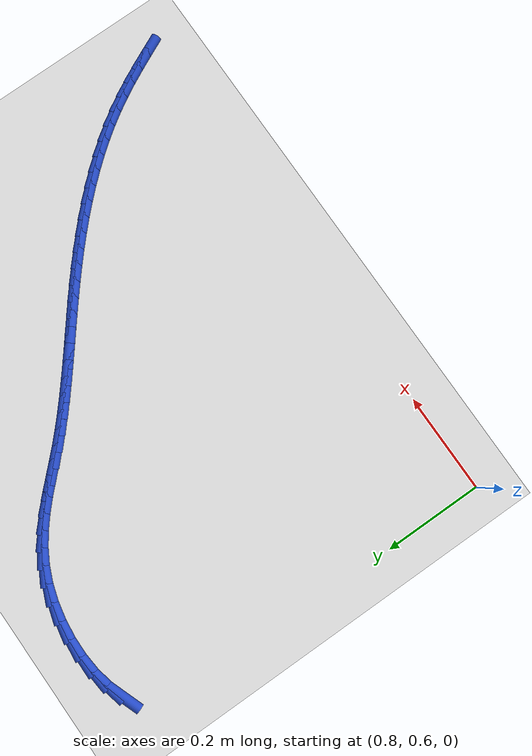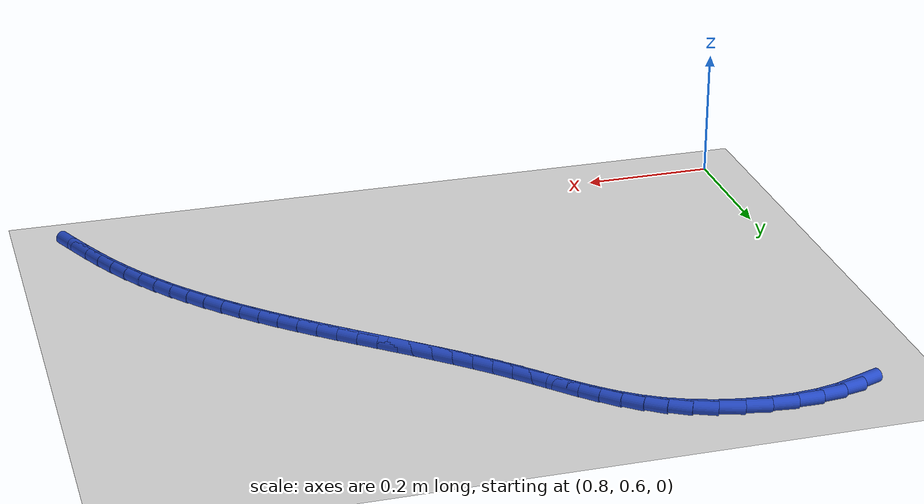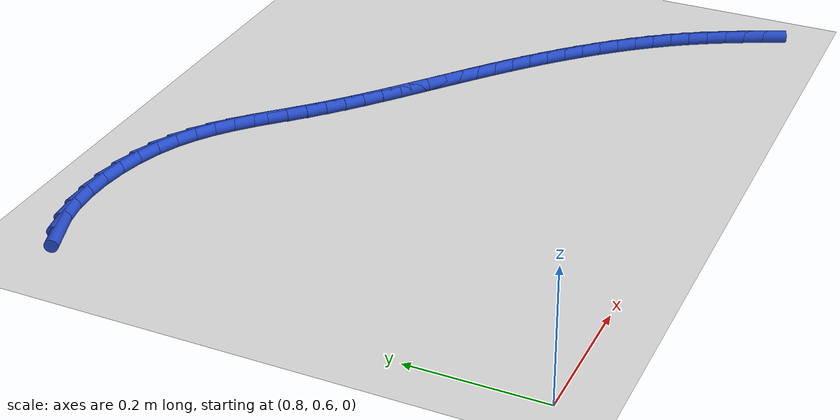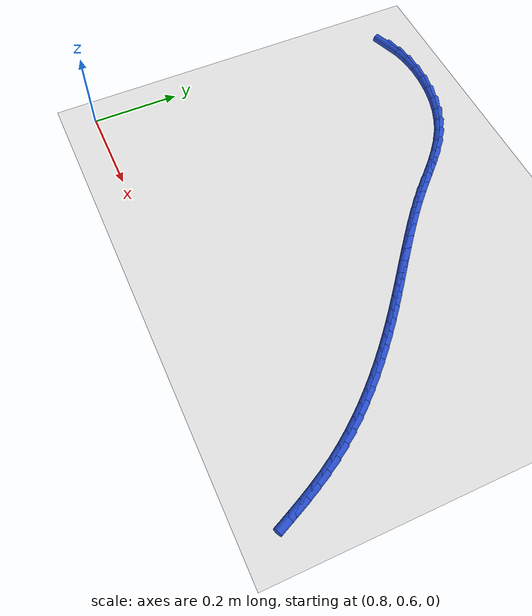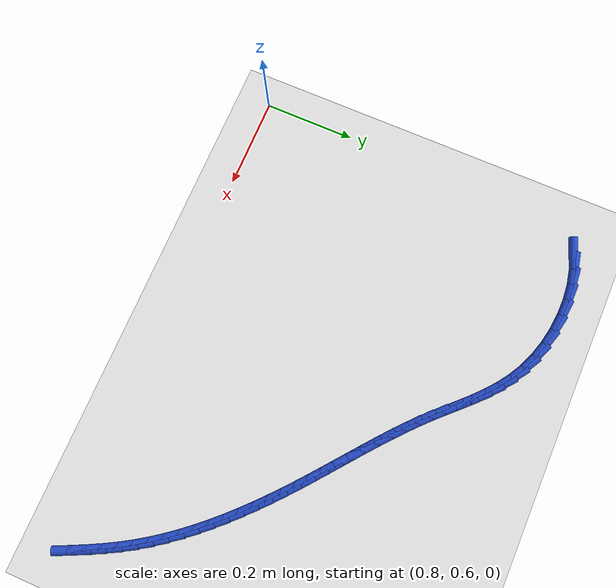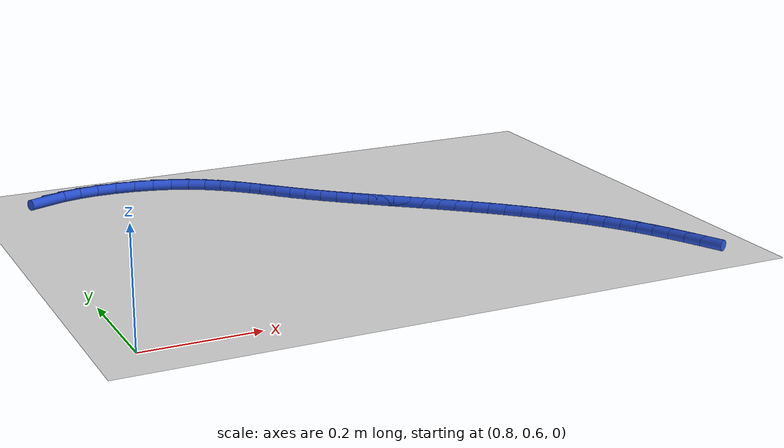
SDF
<sdf version="1.6">
 <world name="default">
  <model name="ground_plane">
   <static>1</static>
   <link name="link">
    <collision name="collision">
     <geometry><plane><normal>0 0 1</normal><size>100 100</size></plane></geometry>
     <surface><friction><ode><mu>100</mu><mu2>50</mu2></ode></friction></surface>
    </collision>
    <visual name="visual">
     <cast_shadows>0</cast_shadows>
     <geometry><plane><normal>0 0 1</normal><size>100 100</size></plane></geometry>
     <material>
      <script><uri>file://media/materials/scripts/gazebo.material</uri><name>Gazebo/WhiteGlow</name></script>
     </material>
    </visual>
   </link>
  </model>
  <model name="line">
   <link name="link_60">
    <pose>0.8673908046752399 1.3505011085866325 0.01 0 1.57 0.35287352331071287</pose>
    <collision name="collision">
     <geometry><cylinder><radius>0.01</radius><length>0.08</length></cylinder></geometry>
    </collision>
    <visual name="visual">
     <material>
      <script><name>Gazebo/Blue</name><uri>file://media/materials/scripts/gazebo.material</uri></script>
     </material>
     <geometry><cylinder><radius>0.01</radius><length>0.08</length></cylinder></geometry>
    </visual>
   </link>
   <link name="link_61">
    <pose>0.8979129075120189 1.3617420429091482 0.01 0 1.57 0.2091591169639746</pose>
    <collision name="collision">
     <geometry><cylinder><radius>0.01</radius><length>0.08</length></cylinder></geometry>
    </collision>
    <visual name="visual">
     <material>
      <script><name>Gazebo/Blue</name><uri>file://media/materials/scripts/gazebo.material</uri></script>
     </material>
     <geometry><cylinder><radius>0.01</radius><length>0.08</length></cylinder></geometry>
    </visual>
   </link>
   <link name="link_62">
    <pose>0.9315179295771093 1.3688751631017848 0.01 0 1.57 0.08991504490829086</pose>
    <collision name="collision">
     <geometry><cylinder><radius>0.01</radius><length>0.08</length></cylinder></geometry>
    </collision>
    <visual name="visual">
     <material>
      <script><name>Gazebo/Blue</name><uri>file://media/materials/scripts/gazebo.material</uri></script>
     </material>
     <geometry><cylinder><radius>0.01</radius><length>0.08</length></cylinder></geometry>
    </visual>
   </link>
   <link name="link_63">
    <pose>0.9672129489347117 1.3720933597830174 0.01 0 1.57 -0.013693287224428823</pose>
    <collision name="collision">
     <geometry><cylinder><radius>0.01</radius><length>0.08</length></cylinder></geometry>
    </collision>
    <visual name="visual">
     <material>
      <script><name>Gazebo/Blue</name><uri>file://media/materials/scripts/gazebo.material</uri></script>
     </material>
     <geometry><cylinder><radius>0.01</radius><length>0.08</length></cylinder></geometry>
    </visual>
   </link>
   <link name="link_64">
    <pose>1.0040050436490255 1.371589523571322 0.01 0 1.57 -0.108873696835155</pose>
    <collision name="collision">
     <geometry><cylinder><radius>0.01</radius><length>0.08</length></cylinder></geometry>
    </collision>
    <visual name="visual">
     <material>
      <script><name>Gazebo/Blue</name><uri>file://media/materials/scripts/gazebo.material</uri></script>
     </material>
     <geometry><cylinder><radius>0.01</radius><length>0.08</length></cylinder></geometry>
    </visual>
   </link>
   <link name="link_65">
    <pose>1.040901291784253 1.367556545085175 0.01 0 1.57 -0.2018706710001404</pose>
    <collision name="collision">
     <geometry><cylinder><radius>0.01</radius><length>0.08</length></cylinder></geometry>
    </collision>
    <visual name="visual">
     <material>
      <script><name>Gazebo/Blue</name><uri>file://media/materials/scripts/gazebo.material</uri></script>
     </material>
     <geometry><cylinder><radius>0.01</radius><length>0.08</length></cylinder></geometry>
    </visual>
   </link>
   <link name="link_66">
    <pose>1.0769087714045944 1.3601873149430515 0.01 0 1.57 -0.29882945125309424</pose>
    <collision name="collision">
     <geometry><cylinder><radius>0.01</radius><length>0.08</length></cylinder></geometry>
    </collision>
    <visual name="visual">
     <material>
      <script><name>Gazebo/Blue</name><uri>file://media/materials/scripts/gazebo.material</uri></script>
     </material>
     <geometry><cylinder><radius>0.01</radius><length>0.08</length></cylinder></geometry>
    </visual>
   </link>
   <link name="link_67">
    <pose>1.111034560574249 1.3496747237634277 0.01 0 1.57 -0.40575146708771503</pose>
    <collision name="collision">
     <geometry><cylinder><radius>0.01</radius><length>0.08</length></cylinder></geometry>
    </collision>
    <visual name="visual">
     <material>
      <script><name>Gazebo/Blue</name><uri>file://media/materials/scripts/gazebo.material</uri></script>
     </material>
     <geometry><cylinder><radius>0.01</radius><length>0.08</length></cylinder></geometry>
    </visual>
   </link>
   <link name="link_68">
    <pose>1.142348189048469 1.3362227213578386 0.01 0 1.57 -0.5140036319667555</pose>
    <collision name="collision">
     <geometry><cylinder><radius>0.01</radius><length>0.08</length></cylinder></geometry>
    </collision>
    <visual name="visual">
     <material>
      <script><name>Gazebo/Blue</name><uri>file://media/materials/scripts/gazebo.material</uri></script>
     </material>
     <geometry><cylinder><radius>0.01</radius><length>0.08</length></cylinder></geometry>
    </visual>
   </link>
   <link name="link_69">
    <pose>1.1707552788197175 1.320183316066111 0.01 0 1.57 -0.6098756465946839</pose>
    <collision name="collision">
     <geometry><cylinder><radius>0.01</radius><length>0.08</length></cylinder></geometry>
    </collision>
    <visual name="visual">
     <material>
      <script><name>Gazebo/Blue</name><uri>file://media/materials/scripts/gazebo.material</uri></script>
     </material>
     <geometry><cylinder><radius>0.01</radius><length>0.08</length></cylinder></geometry>
    </visual>
   </link>
   <link name="link_70">
    <pose>1.1967582067494154 1.3020141919462713 0.01 0 1.57 -0.6884368895709986</pose>
    <collision name="collision">
     <geometry><cylinder><radius>0.01</radius><length>0.08</length></cylinder></geometry>
    </collision>
    <visual name="visual">
     <material>
      <script><name>Gazebo/Blue</name><uri>file://media/materials/scripts/gazebo.material</uri></script>
     </material>
     <geometry><cylinder><radius>0.01</radius><length>0.08</length></cylinder></geometry>
    </visual>
   </link>
   <link name="link_71">
    <pose>1.2208722208731728 1.2821753123349042 0.01 0 1.57 -0.7467849278004831</pose>
    <collision name="collision">
     <geometry><cylinder><radius>0.01</radius><length>0.08</length></cylinder></geometry>
    </collision>
    <visual name="visual">
     <material>
      <script><name>Gazebo/Blue</name><uri>file://media/materials/scripts/gazebo.material</uri></script>
     </material>
     <geometry><cylinder><radius>0.01</radius><length>0.08</length></cylinder></geometry>
    </visual>
   </link>
   <link name="link_72">
    <pose>1.2436125692266011 1.2611266405685944 0.01 0 1.57 -0.7834881563235929</pose>
    <collision name="collision">
     <geometry><cylinder><radius>0.01</radius><length>0.08</length></cylinder></geometry>
    </collision>
    <visual name="visual">
     <material>
      <script><name>Gazebo/Blue</name><uri>file://media/materials/scripts/gazebo.material</uri></script>
     </material>
     <geometry><cylinder><radius>0.01</radius><length>0.08</length></cylinder></geometry>
    </visual>
   </link>
   <link name="link_73">
    <pose>1.265494499845312 1.2393281399839255 0.01 0 1.57 -0.7979952815827905</pose>
    <collision name="collision">
     <geometry><cylinder><radius>0.01</radius><length>0.08</length></cylinder></geometry>
    </collision>
    <visual name="visual">
     <material>
      <script><name>Gazebo/Blue</name><uri>file://media/materials/scripts/gazebo.material</uri></script>
     </material>
     <geometry><cylinder><radius>0.01</radius><length>0.08</length></cylinder></geometry>
    </visual>
   </link>
   <link name="link_74">
    <pose>1.2870332607649166 1.2172397739174816 0.01 0 1.57 -0.7901524983970537</pose>
    <collision name="collision">
     <geometry><cylinder><radius>0.01</radius><length>0.08</length></cylinder></geometry>
    </collision>
    <visual name="visual">
     <material>
      <script><name>Gazebo/Blue</name><uri>file://media/materials/scripts/gazebo.material</uri></script>
     </material>
     <geometry><cylinder><radius>0.01</radius><length>0.08</length></cylinder></geometry>
    </visual>
   </link>
   <link name="link_75">
    <pose>1.3087441000210251 1.195321505705848 0.01 0 1.57 -0.7639403714371454</pose>
    <collision name="collision">
     <geometry><cylinder><radius>0.01</radius><length>0.08</length></cylinder></geometry>
    </collision>
    <visual name="visual">
     <material>
      <script><name>Gazebo/Blue</name><uri>file://media/materials/scripts/gazebo.material</uri></script>
     </material>
     <geometry><cylinder><radius>0.01</radius><length>0.08</length></cylinder></geometry>
    </visual>
   </link>
   <link name="link_76">
    <pose>1.3310523122892035 1.1739506927494416 0.01 0 1.57 -0.7373467756578864</pose>
    <collision name="collision">
     <geometry><cylinder><radius>0.01</radius><length>0.08</length></cylinder></geometry>
    </collision>
    <visual name="visual">
     <material>
      <script><name>Gazebo/Blue</name><uri>file://media/materials/scripts/gazebo.material</uri></script>
     </material>
     <geometry><cylinder><radius>0.01</radius><length>0.08</length></cylinder></geometry>
    </visual>
   </link>
   <link name="link_77">
    <pose>1.3539758987368833 1.1531306668256622 0.01 0 1.57 -0.7154420794624751</pose>
    <collision name="collision">
     <geometry><cylinder><radius>0.01</radius><length>0.08</length></cylinder></geometry>
    </collision>
    <visual name="visual">
     <material>
      <script><name>Gazebo/Blue</name><uri>file://media/materials/scripts/gazebo.material</uri></script>
     </material>
     <geometry><cylinder><radius>0.01</radius><length>0.08</length></cylinder></geometry>
    </visual>
   </link>
   <link name="link_78">
    <pose>1.377417641448659 1.1327589517665797 0.01 0 1.57 -0.6981987365153679</pose>
    <collision name="collision">
     <geometry><cylinder><radius>0.01</radius><length>0.08</length></cylinder></geometry>
    </collision>
    <visual name="visual">
     <material>
      <script><name>Gazebo/Blue</name><uri>file://media/materials/scripts/gazebo.material</uri></script>
     </material>
     <geometry><cylinder><radius>0.01</radius><length>0.08</length></cylinder></geometry>
    </visual>
   </link>
   <link name="link_79">
    <pose>1.401280315331017 1.112733064812466 0.01 0 1.57 -0.6855730978841549</pose>
    <collision name="collision">
     <geometry><cylinder><radius>0.01</radius><length>0.08</length></cylinder></geometry>
    </collision>
    <visual name="visual">
     <material>
      <script><name>Gazebo/Blue</name><uri>file://media/materials/scripts/gazebo.material</uri></script>
     </material>
     <geometry><cylinder><radius>0.01</radius><length>0.08</length></cylinder></geometry>
    </visual>
   </link>
   <link name="link_80">
    <pose>1.425466695290445 1.0929505232035936 0.01 0 1.57 -0.6775169332541052</pose>
    <collision name="collision">
     <geometry><cylinder><radius>0.01</radius><length>0.08</length></cylinder></geometry>
    </collision>
    <visual name="visual">
     <material>
      <script><name>Gazebo/Blue</name><uri>file://media/materials/scripts/gazebo.material</uri></script>
     </material>
     <geometry><cylinder><radius>0.01</radius><length>0.08</length></cylinder></geometry>
    </visual>
   </link>
   <link name="link_81">
    <pose>1.4498795562334288 1.0733088441802343 0.01 0 1.57 -0.6739853313524801</pose>
    <collision name="collision">
     <geometry><cylinder><radius>0.01</radius><length>0.08</length></cylinder></geometry>
    </collision>
    <visual name="visual">
     <material>
      <script><name>Gazebo/Blue</name><uri>file://media/materials/scripts/gazebo.material</uri></script>
     </material>
     <geometry><cylinder><radius>0.01</radius><length>0.08</length></cylinder></geometry>
    </visual>
   </link>
   <link name="link_82">
    <pose>1.4744216730664557 1.0537055449826616 0.01 0 1.57 -0.6749414982882395</pose>
    <collision name="collision">
     <geometry><cylinder><radius>0.01</radius><length>0.08</length></cylinder></geometry>
    </collision>
    <visual name="visual">
     <material>
      <script><name>Gazebo/Blue</name><uri>file://media/materials/scripts/gazebo.material</uri></script>
     </material>
     <geometry><cylinder><radius>0.01</radius><length>0.08</length></cylinder></geometry>
    </visual>
   </link>
   <link name="link_83">
    <pose>1.4989958206960123 1.034038142851147 0.01 0 1.57 -0.6803586846033525</pose>
    <collision name="collision">
     <geometry><cylinder><radius>0.01</radius><length>0.08</length></cylinder></geometry>
    </collision>
    <visual name="visual">
     <material>
      <script><name>Gazebo/Blue</name><uri>file://media/materials/scripts/gazebo.material</uri></script>
     </material>
     <geometry><cylinder><radius>0.01</radius><length>0.08</length></cylinder></geometry>
    </visual>
   </link>
   <link name="link_84">
    <pose>1.5235047740285852 1.0142041550259626 0.01 0 1.57 -0.6902194222824276</pose>
    <collision name="collision">
     <geometry><cylinder><radius>0.01</radius><length>0.08</length></cylinder></geometry>
    </collision>
    <visual name="visual">
     <material>
      <script><name>Gazebo/Blue</name><uri>file://media/materials/scripts/gazebo.material</uri></script>
     </material>
     <geometry><cylinder><radius>0.01</radius><length>0.08</length></cylinder></geometry>
    </visual>
   </link>
   <link name="link_85">
    <pose>1.5478513079706622 0.9941010987473815 0.01 0 1.57 -0.7044129732080671</pose>
    <collision name="collision">
     <geometry><cylinder><radius>0.01</radius><length>0.08</length></cylinder></geometry>
    </collision>
    <visual name="visual">
     <material>
      <script><name>Gazebo/Blue</name><uri>file://media/materials/scripts/gazebo.material</uri></script>
     </material>
     <geometry><cylinder><radius>0.01</radius><length>0.08</length></cylinder></geometry>
    </visual>
   </link>
   <link name="link_86">
    <pose>1.5719390615948396 0.9736298724956608 0.01 0 1.57 -0.7217115379419016</pose>
    <collision name="collision">
     <geometry><cylinder><radius>0.01</radius><length>0.08</length></cylinder></geometry>
    </collision>
    <visual name="visual">
     <material>
      <script><name>Gazebo/Blue</name><uri>file://media/materials/scripts/gazebo.material</uri></script>
     </material>
     <geometry><cylinder><radius>0.01</radius><length>0.08</length></cylinder></geometry>
    </visual>
   </link>
   <link name="link_87">
    <pose>1.5956824007626167 0.9527333456720508 0.01 0 1.57 -0.7413268524245272</pose>
    <collision name="collision">
     <geometry><cylinder><radius>0.01</radius><length>0.08</length></cylinder></geometry>
    </collision>
    <visual name="visual">
     <material>
      <script><name>Gazebo/Blue</name><uri>file://media/materials/scripts/gazebo.material</uri></script>
     </material>
     <geometry><cylinder><radius>0.01</radius><length>0.08</length></cylinder></geometry>
    </visual>
   </link>
   <link name="link_88">
    <pose>1.6190029494909288 0.9313827868074184 0.01 0 1.57 -0.7633036082681391</pose>
    <collision name="collision">
     <geometry><cylinder><radius>0.01</radius><length>0.08</length></cylinder></geometry>
    </collision>
    <visual name="visual">
     <material>
      <script><name>Gazebo/Blue</name><uri>file://media/materials/scripts/gazebo.material</uri></script>
     </material>
     <geometry><cylinder><radius>0.01</radius><length>0.08</length></cylinder></geometry>
    </visual>
   </link>
   <link name="link_89">
    <pose>1.6418224688820042 0.9095500008089863 0.01 0 1.57 -0.7877074701975779</pose>
    <collision name="collision">
     <geometry><cylinder><radius>0.01</radius><length>0.08</length></cylinder></geometry>
    </collision>
    <visual name="visual">
     <material>
      <script><name>Gazebo/Blue</name><uri>file://media/materials/scripts/gazebo.material</uri></script>
     </material>
     <geometry><cylinder><radius>0.01</radius><length>0.08</length></cylinder></geometry>
    </visual>
   </link>
   <link name="link_90">
    <pose>1.66406272003807 0.8872067925839786 0.01 0 1.57 -0.8146059596096425</pose>
    <collision name="collision">
     <geometry><cylinder><radius>0.01</radius><length>0.08</length></cylinder></geometry>
    </collision>
    <visual name="visual">
     <material>
      <script><name>Gazebo/Blue</name><uri>file://media/materials/scripts/gazebo.material</uri></script>
     </material>
     <geometry><cylinder><radius>0.01</radius><length>0.08</length></cylinder></geometry>
    </visual>
   </link>
   <link name="link_91">
    <pose>1.6856454640613527 0.8643249670396174 0.01 0 1.57 -0.8440643168390239</pose>
    <collision name="collision">
     <geometry><cylinder><radius>0.01</radius><length>0.08</length></cylinder></geometry>
    </collision>
    <visual name="visual">
     <material>
      <script><name>Gazebo/Blue</name><uri>file://media/materials/scripts/gazebo.material</uri></script>
     </material>
     <geometry><cylinder><radius>0.01</radius><length>0.08</length></cylinder></geometry>
    </visual>
   </link>
   <link name="link_92">
    <pose>1.706492462054081 0.8408763290831262 0.01 0 1.57 -0.8761404839040448</pose>
    <collision name="collision">
     <geometry><cylinder><radius>0.01</radius><length>0.08</length></cylinder></geometry>
    </collision>
    <visual name="visual">
     <material>
      <script><name>Gazebo/Blue</name><uri>file://media/materials/scripts/gazebo.material</uri></script>
     </material>
     <geometry><cylinder><radius>0.01</radius><length>0.08</length></cylinder></geometry>
    </visual>
   </link>
   <link name="link_93">
    <pose>1.7265254751184813 0.8168326836217273 0.01 0 1.57 -0.9108791342368345</pose>
    <collision name="collision">
     <geometry><cylinder><radius>0.01</radius><length>0.08</length></cylinder></geometry>
    </collision>
    <visual name="visual">
     <material>
      <script><name>Gazebo/Blue</name><uri>file://media/materials/scripts/gazebo.material</uri></script>
     </material>
     <geometry><cylinder><radius>0.01</radius><length>0.08</length></cylinder></geometry>
    </visual>
   </link>
   <link name="link_94">
    <pose>1.745666264356781 0.7921658355626446 0.01 0 1.57 -0.9483047589814596</pose>
    <collision name="collision">
     <geometry><cylinder><radius>0.01</radius><length>0.08</length></cylinder></geometry>
    </collision>
    <visual name="visual">
     <material>
      <script><name>Gazebo/Blue</name><uri>file://media/materials/scripts/gazebo.material</uri></script>
     </material>
     <geometry><cylinder><radius>0.01</radius><length>0.08</length></cylinder></geometry>
    </visual>
   </link>
   <link name="link_95">
    <pose>1.7638365908712086 0.7668475898131013 0.01 0 1.57 -0.9884139470959663</pose>
    <collision name="collision">
     <geometry><cylinder><radius>0.01</radius><length>0.08</length></cylinder></geometry>
    </collision>
    <visual name="visual">
     <material>
      <script><name>Gazebo/Blue</name><uri>file://media/materials/scripts/gazebo.material</uri></script>
     </material>
     <geometry><cylinder><radius>0.01</radius><length>0.08</length></cylinder></geometry>
    </visual>
   </link>
   <link name="link_96">
    <pose>1.7809582157639903 0.7408497512803192 0.01 0 1.57 -1.0307752039141127</pose>
    <collision name="collision">
     <geometry><cylinder><radius>0.01</radius><length>0.08</length></cylinder></geometry>
    </collision>
    <visual name="visual">
     <material>
      <script><name>Gazebo/Blue</name><uri>file://media/materials/scripts/gazebo.material</uri></script>
     </material>
     <geometry><cylinder><radius>0.01</radius><length>0.08</length></cylinder></geometry>
    </visual>
   </link>
   <link name="link_97">
    <pose>1.796963574668389 0.7141500493359947 0.01 0 1.57 -1.0694400583896109</pose>
    <collision name="collision">
     <geometry><cylinder><radius>0.01</radius><length>0.08</length></cylinder></geometry>
    </collision>
    <visual name="visual">
     <material>
      <script><name>Gazebo/Blue</name><uri>file://media/materials/scripts/gazebo.material</uri></script>
     </material>
     <geometry><cylinder><radius>0.01</radius><length>0.08</length></cylinder></geometry>
    </visual>
   </link>
   <link name="link_98">
    <pose>1.8119449826168517 0.6868149479123515 0.01 0 1.57 -1.0998444419153606</pose>
    <collision name="collision">
     <geometry><cylinder><radius>0.01</radius><length>0.08</length></cylinder></geometry>
    </collision>
    <visual name="visual">
     <material>
      <script><name>Gazebo/Blue</name><uri>file://media/materials/scripts/gazebo.material</uri></script>
     </material>
     <geometry><cylinder><radius>0.01</radius><length>0.08</length></cylinder></geometry>
    </visual>
   </link>
   <link name="link_99">
    <pose>1.8261179103574476 0.6589792635146057 0.01 0 1.57 -1.1219157453712636</pose>
    <collision name="collision">
     <geometry><cylinder><radius>0.01</radius><length>0.08</length></cylinder></geometry>
    </collision>
    <visual name="visual">
     <material>
      <script><name>Gazebo/Blue</name><uri>file://media/materials/scripts/gazebo.material</uri></script>
     </material>
     <geometry><cylinder><radius>0.01</radius><length>0.08</length></cylinder></geometry>
    </visual>
   </link>
   <link name="link_100">
    <pose>1.839701001269013 0.6307795734876939 0.01 0 1.57 -1.1357328230687458</pose>
    <collision name="collision">
     <geometry><cylinder><radius>0.01</radius><length>0.08</length></cylinder></geometry>
    </collision>
    <visual name="visual">
     <material>
      <script><name>Gazebo/Blue</name><uri>file://media/materials/scripts/gazebo.material</uri></script>
     </material>
     <geometry><cylinder><radius>0.01</radius><length>0.08</length></cylinder></geometry>
    </visual>
   </link>
  </model>
 </world>
</sdf>
